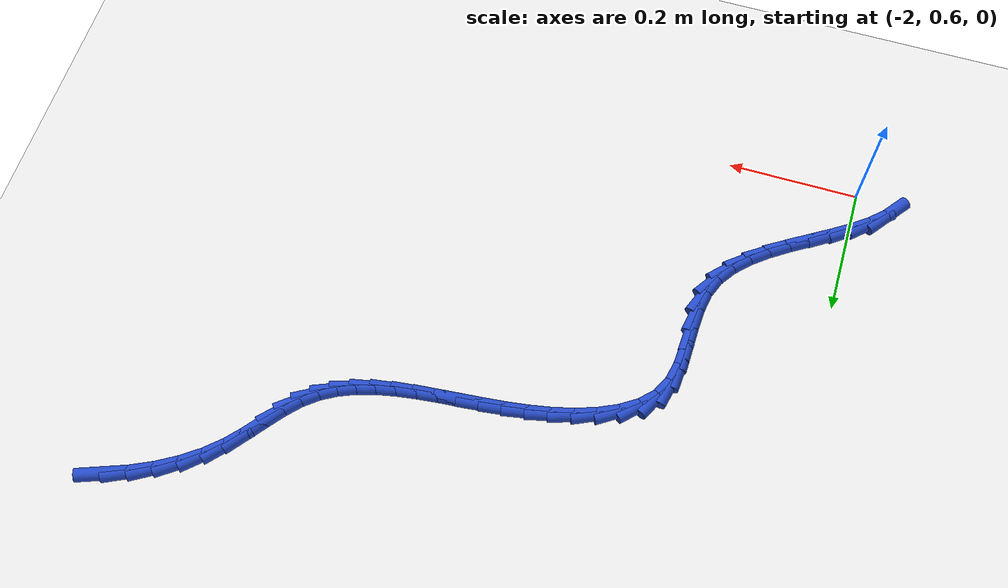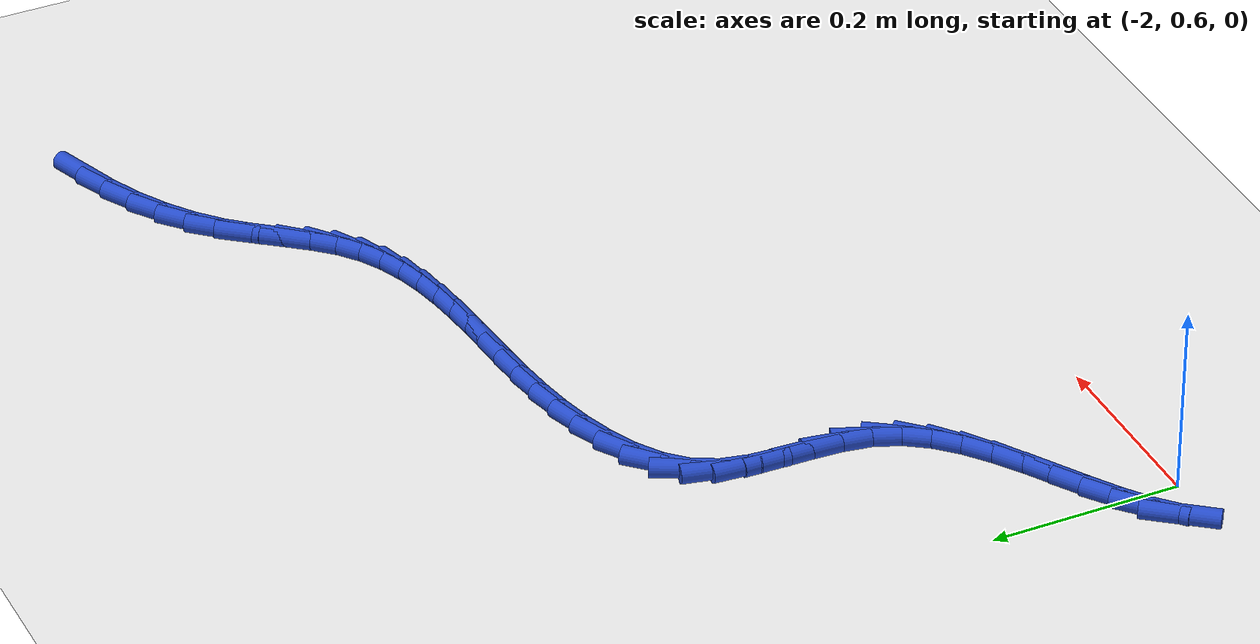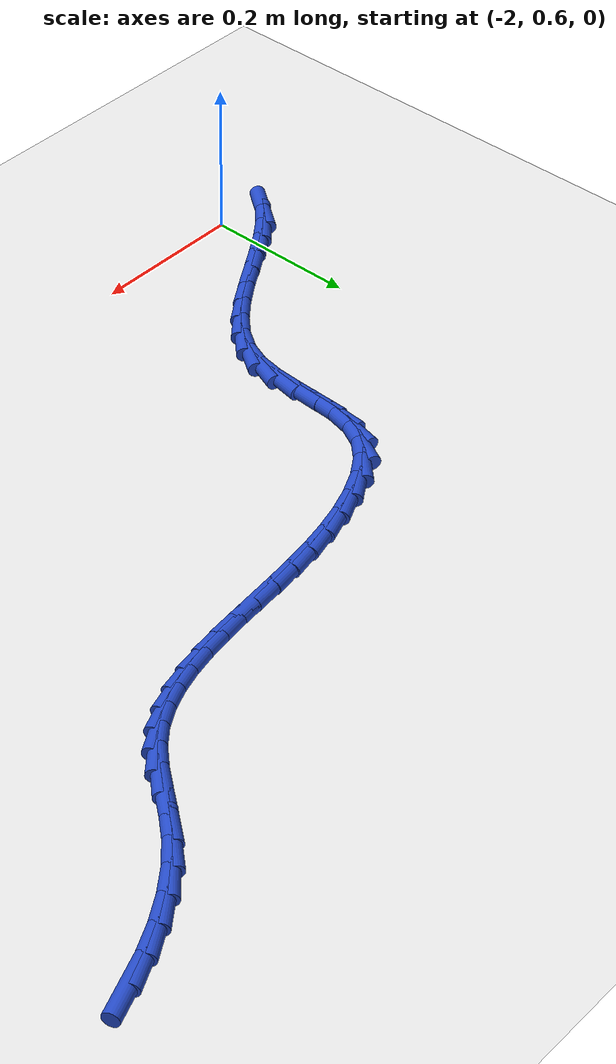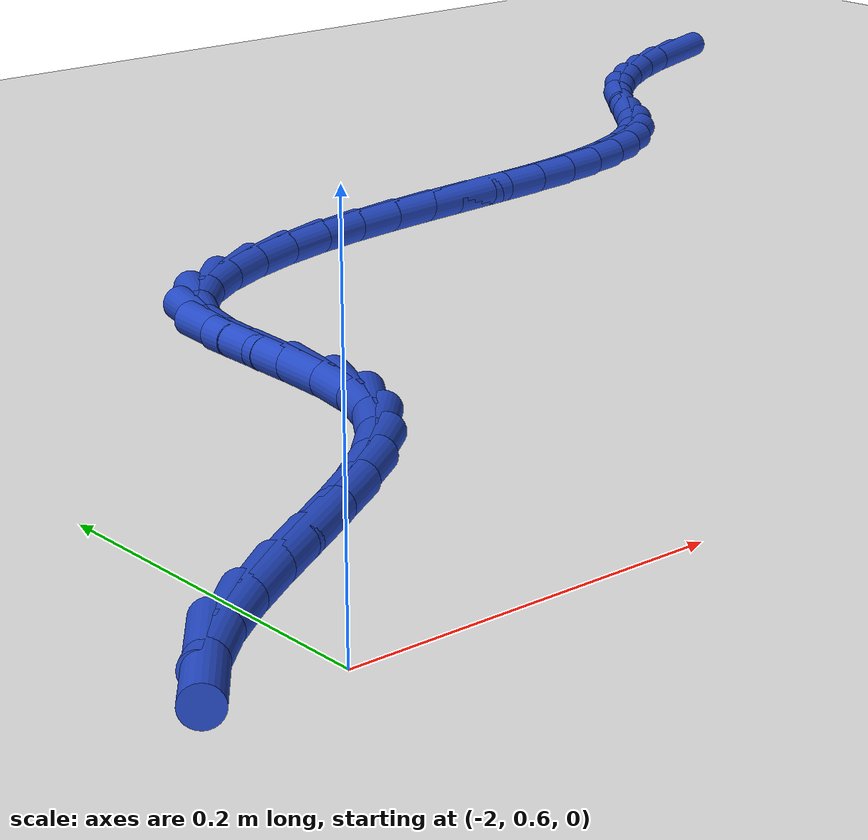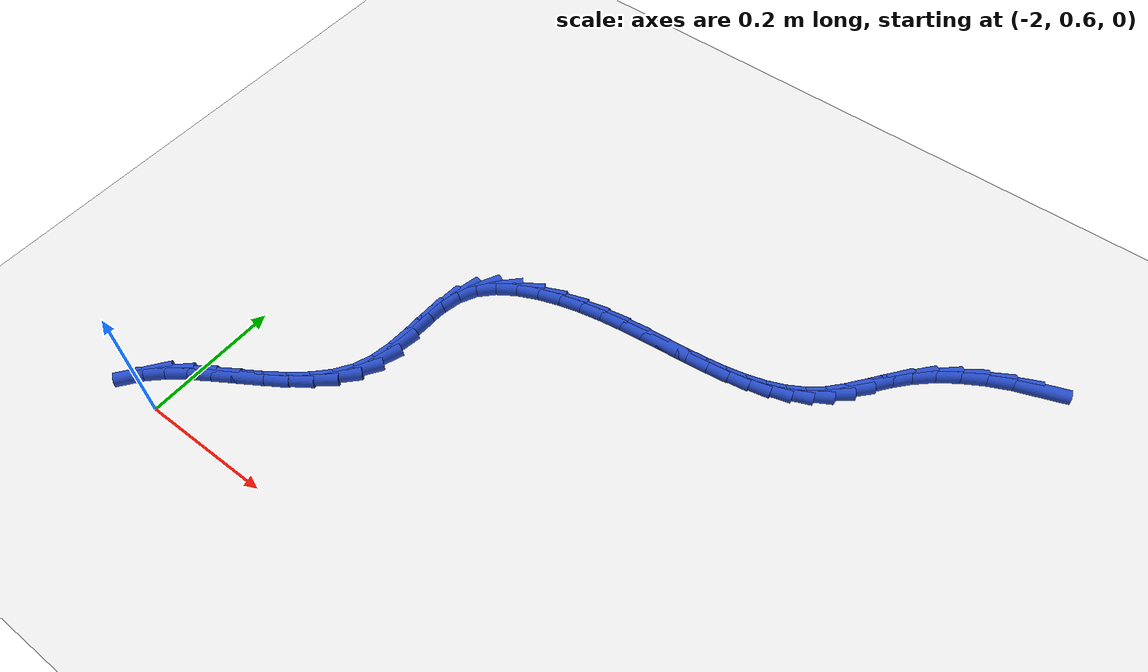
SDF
<sdf version="1.6">
 <world name="default">
  <model name="ground_plane">
   <static>1</static>
   <link name="link">
    <collision name="collision">
     <geometry><plane><normal>0 0 1</normal><size>100 100</size></plane></geometry>
     <surface><friction><ode><mu>100</mu><mu2>50</mu2></ode></friction></surface>
    </collision>
    <visual name="visual">
     <cast_shadows>0</cast_shadows>
     <geometry><plane><normal>0 0 1</normal><size>100 100</size></plane></geometry>
     <material>
      <script><uri>file://media/materials/scripts/gazebo.material</uri><name>Gazebo/WhiteGlow</name></script>
     </material>
    </visual>
   </link>
  </model>
  <model name="line">
   <link name="link_62">
    <pose>-1.0637617504362515 1.3533383351506028 0.01 0 1.57 0.3566321725270101</pose>
    <collision name="collision">
     <geometry><cylinder><radius>0.01</radius><length>0.08</length></cylinder></geometry>
    </collision>
    <visual name="visual">
     <material>
      <script><name>Gazebo/Blue</name><uri>file://media/materials/scripts/gazebo.material</uri></script>
     </material>
     <geometry><cylinder><radius>0.01</radius><length>0.08</length></cylinder></geometry>
    </visual>
   </link>
   <link name="link_63">
    <pose>-1.098061494481492 1.34055952897938 0.01 0 1.57 0.44337216714333494</pose>
    <collision name="collision">
     <geometry><cylinder><radius>0.01</radius><length>0.08</length></cylinder></geometry>
    </collision>
    <visual name="visual">
     <material>
      <script><name>Gazebo/Blue</name><uri>file://media/materials/scripts/gazebo.material</uri></script>
     </material>
     <geometry><cylinder><radius>0.01</radius><length>0.08</length></cylinder></geometry>
    </visual>
   </link>
   <link name="link_64">
    <pose>-1.130945717458065 1.3249425928600767 0.01 0 1.57 0.5342232366662157</pose>
    <collision name="collision">
     <geometry><cylinder><radius>0.01</radius><length>0.08</length></cylinder></geometry>
    </collision>
    <visual name="visual">
     <material>
      <script><name>Gazebo/Blue</name><uri>file://media/materials/scripts/gazebo.material</uri></script>
     </material>
     <geometry><cylinder><radius>0.01</radius><length>0.08</length></cylinder></geometry>
    </visual>
   </link>
   <link name="link_65">
    <pose>-1.1617649572261366 1.306709801553128 0.01 0 1.57 0.6331233170564774</pose>
    <collision name="collision">
     <geometry><cylinder><radius>0.01</radius><length>0.08</length></cylinder></geometry>
    </collision>
    <visual name="visual">
     <material>
      <script><name>Gazebo/Blue</name><uri>file://media/materials/scripts/gazebo.material</uri></script>
     </material>
     <geometry><cylinder><radius>0.01</radius><length>0.08</length></cylinder></geometry>
    </visual>
   </link>
   <link name="link_66">
    <pose>-1.1898697516458727 1.2860834298189712 0.01 0 1.57 0.7445180227827529</pose>
    <collision name="collision">
     <geometry><cylinder><radius>0.01</radius><length>0.08</length></cylinder></geometry>
    </collision>
    <visual name="visual">
     <material>
      <script><name>Gazebo/Blue</name><uri>file://media/materials/scripts/gazebo.material</uri></script>
     </material>
     <geometry><cylinder><radius>0.01</radius><length>0.08</length></cylinder></geometry>
    </visual>
   </link>
   <link name="link_67">
    <pose>-1.2146114518813442 1.263286210612098 0.01 0 1.57 0.8551568165661251</pose>
    <collision name="collision">
     <geometry><cylinder><radius>0.01</radius><length>0.08</length></cylinder></geometry>
    </collision>
    <visual name="visual">
     <material>
      <script><name>Gazebo/Blue</name><uri>file://media/materials/scripts/gazebo.material</uri></script>
     </material>
     <geometry><cylinder><radius>0.01</radius><length>0.08</length></cylinder></geometry>
    </visual>
   </link>
   <link name="link_68">
    <pose>-1.235867122943851 1.2388370502586945 0.01 0 1.57 0.9146644474738805</pose>
    <collision name="collision">
     <geometry><cylinder><radius>0.01</radius><length>0.08</length></cylinder></geometry>
    </collision>
    <visual name="visual">
     <material>
      <script><name>Gazebo/Blue</name><uri>file://media/materials/scripts/gazebo.material</uri></script>
     </material>
     <geometry><cylinder><radius>0.01</radius><length>0.08</length></cylinder></geometry>
    </visual>
   </link>
   <link name="link_69">
    <pose>-1.2549434142028086 1.214060245358944 0.01 0 1.57 0.9083300814473821</pose>
    <collision name="collision">
     <geometry><cylinder><radius>0.01</radius><length>0.08</length></cylinder></geometry>
    </collision>
    <visual name="visual">
     <material>
      <script><name>Gazebo/Blue</name><uri>file://media/materials/scripts/gazebo.material</uri></script>
     </material>
     <geometry><cylinder><radius>0.01</radius><length>0.08</length></cylinder></geometry>
    </visual>
   </link>
   <link name="link_70">
    <pose>-1.2733876796332058 1.1904156991648056 0.01 0 1.57 0.8272620294305417</pose>
    <collision name="collision">
     <geometry><cylinder><radius>0.01</radius><length>0.08</length></cylinder></geometry>
    </collision>
    <visual name="visual">
     <material>
      <script><name>Gazebo/Blue</name><uri>file://media/materials/scripts/gazebo.material</uri></script>
     </material>
     <geometry><cylinder><radius>0.01</radius><length>0.08</length></cylinder></geometry>
    </visual>
   </link>
   <link name="link_71">
    <pose>-1.2927472732100296 1.1693633149282376 0.01 0 1.57 0.6763125241229873</pose>
    <collision name="collision">
     <geometry><cylinder><radius>0.01</radius><length>0.08</length></cylinder></geometry>
    </collision>
    <visual name="visual">
     <material>
      <script><name>Gazebo/Blue</name><uri>file://media/materials/scripts/gazebo.material</uri></script>
     </material>
     <geometry><cylinder><radius>0.01</radius><length>0.08</length></cylinder></geometry>
    </visual>
   </link>
   <link name="link_72">
    <pose>-1.3142991769995678 1.1520661741702618 0.01 0 1.57 0.521705374915482</pose>
    <collision name="collision">
     <geometry><cylinder><radius>0.01</radius><length>0.08</length></cylinder></geometry>
    </collision>
    <visual name="visual">
     <material>
      <script><name>Gazebo/Blue</name><uri>file://media/materials/scripts/gazebo.material</uri></script>
     </material>
     <geometry><cylinder><radius>0.01</radius><length>0.08</length></cylinder></geometry>
    </visual>
   </link>
   <link name="link_73">
    <pose>-1.3381222304066607 1.1383720043857015 0.01 0 1.57 0.38952080807354994</pose>
    <collision name="collision">
     <geometry><cylinder><radius>0.01</radius><length>0.08</length></cylinder></geometry>
    </collision>
    <visual name="visual">
     <material>
      <script><name>Gazebo/Blue</name><uri>file://media/materials/scripts/gazebo.material</uri></script>
     </material>
     <geometry><cylinder><radius>0.01</radius><length>0.08</length></cylinder></geometry>
    </visual>
   </link>
   <link name="link_74">
    <pose>-1.3639634948093373 1.127764298010054 0.01 0 1.57 0.2833220206624581</pose>
    <collision name="collision">
     <geometry><cylinder><radius>0.01</radius><length>0.08</length></cylinder></geometry>
    </collision>
    <visual name="visual">
     <material>
      <script><name>Gazebo/Blue</name><uri>file://media/materials/scripts/gazebo.material</uri></script>
     </material>
     <geometry><cylinder><radius>0.01</radius><length>0.08</length></cylinder></geometry>
    </visual>
   </link>
   <link name="link_75">
    <pose>-1.3915700196650418 1.1197265343920733 0.01 0 1.57 0.20269225563554946</pose>
    <collision name="collision">
     <geometry><cylinder><radius>0.01</radius><length>0.08</length></cylinder></geometry>
    </collision>
    <visual name="visual">
     <material>
      <script><name>Gazebo/Blue</name><uri>file://media/materials/scripts/gazebo.material</uri></script>
     </material>
     <geometry><cylinder><radius>0.01</radius><length>0.08</length></cylinder></geometry>
    </visual>
   </link>
   <link name="link_76">
    <pose>-1.420688854431221 1.1137421928805131 0.01 0 1.57 0.14536965382685466</pose>
    <collision name="collision">
     <geometry><cylinder><radius>0.01</radius><length>0.08</length></cylinder></geometry>
    </collision>
    <visual name="visual">
     <material>
      <script><name>Gazebo/Blue</name><uri>file://media/materials/scripts/gazebo.material</uri></script>
     </material>
     <geometry><cylinder><radius>0.01</radius><length>0.08</length></cylinder></geometry>
    </visual>
   </link>
   <link name="link_77">
    <pose>-1.4510670485653199 1.1092947528241275 0.01 0 1.57 0.10876463344113767</pose>
    <collision name="collision">
     <geometry><cylinder><radius>0.01</radius><length>0.08</length></cylinder></geometry>
    </collision>
    <visual name="visual">
     <material>
      <script><name>Gazebo/Blue</name><uri>file://media/materials/scripts/gazebo.material</uri></script>
     </material>
     <geometry><cylinder><radius>0.01</radius><length>0.08</length></cylinder></geometry>
    </visual>
   </link>
   <link name="link_78">
    <pose>-1.4824516515247839 1.1058676935716698 0.01 0 1.57 0.0907079423159191</pose>
    <collision name="collision">
     <geometry><cylinder><radius>0.01</radius><length>0.08</length></cylinder></geometry>
    </collision>
    <visual name="visual">
     <material>
      <script><name>Gazebo/Blue</name><uri>file://media/materials/scripts/gazebo.material</uri></script>
     </material>
     <geometry><cylinder><radius>0.01</radius><length>0.08</length></cylinder></geometry>
    </visual>
   </link>
   <link name="link_79">
    <pose>-1.5145897127670582 1.1029444944718938 0.01 0 1.57 0.0897091932440971</pose>
    <collision name="collision">
     <geometry><cylinder><radius>0.01</radius><length>0.08</length></cylinder></geometry>
    </collision>
    <visual name="visual">
     <material>
      <script><name>Gazebo/Blue</name><uri>file://media/materials/scripts/gazebo.material</uri></script>
     </material>
     <geometry><cylinder><radius>0.01</radius><length>0.08</length></cylinder></geometry>
    </visual>
   </link>
   <link name="link_80">
    <pose>-1.5472282817495888 1.1000086348735536 0.01 0 1.57 0.1049774851446261</pose>
    <collision name="collision">
     <geometry><cylinder><radius>0.01</radius><length>0.08</length></cylinder></geometry>
    </collision>
    <visual name="visual">
     <material>
      <script><name>Gazebo/Blue</name><uri>file://media/materials/scripts/gazebo.material</uri></script>
     </material>
     <geometry><cylinder><radius>0.01</radius><length>0.08</length></cylinder></geometry>
    </visual>
   </link>
   <link name="link_81">
    <pose>-1.580114407929821 1.0965435941254027 0.01 0 1.57 0.13633397089339824</pose>
    <collision name="collision">
     <geometry><cylinder><radius>0.01</radius><length>0.08</length></cylinder></geometry>
    </collision>
    <visual name="visual">
     <material>
      <script><name>Gazebo/Blue</name><uri>file://media/materials/scripts/gazebo.material</uri></script>
     </material>
     <geometry><cylinder><radius>0.01</radius><length>0.08</length></cylinder></geometry>
    </visual>
   </link>
   <link name="link_82">
    <pose>-1.6129951407652006 1.0920328515761948 0.01 0 1.57 0.18405258518880663</pose>
    <collision name="collision">
     <geometry><cylinder><radius>0.01</radius><length>0.08</length></cylinder></geometry>
    </collision>
    <visual name="visual">
     <material>
      <script><name>Gazebo/Blue</name><uri>file://media/materials/scripts/gazebo.material</uri></script>
     </material>
     <geometry><cylinder><radius>0.01</radius><length>0.08</length></cylinder></geometry>
    </visual>
   </link>
   <link name="link_83">
    <pose>-1.6456175297131725 1.0859598865746838 0.01 0 1.57 0.24860787198362144</pose>
    <collision name="collision">
     <geometry><cylinder><radius>0.01</radius><length>0.08</length></cylinder></geometry>
    </collision>
    <visual name="visual">
     <material>
      <script><name>Gazebo/Blue</name><uri>file://media/materials/scripts/gazebo.material</uri></script>
     </material>
     <geometry><cylinder><radius>0.01</radius><length>0.08</length></cylinder></geometry>
    </visual>
   </link>
   <link name="link_84">
    <pose>-1.677728624231182 1.0778081784696227 0.01 0 1.57 0.33031688483975297</pose>
    <collision name="collision">
     <geometry><cylinder><radius>0.01</radius><length>0.08</length></cylinder></geometry>
    </collision>
    <visual name="visual">
     <material>
      <script><name>Gazebo/Blue</name><uri>file://media/materials/scripts/gazebo.material</uri></script>
     </material>
     <geometry><cylinder><radius>0.01</radius><length>0.08</length></cylinder></geometry>
    </visual>
   </link>
   <link name="link_85">
    <pose>-1.709071211745086 1.0670614643837562 0.01 0 1.57 0.4350412598550102</pose>
    <collision name="collision">
     <geometry><cylinder><radius>0.01</radius><length>0.08</length></cylinder></geometry>
    </collision>
    <visual name="visual">
     <material>
      <script><name>Gazebo/Blue</name><uri>file://media/materials/scripts/gazebo.material</uri></script>
     </material>
     <geometry><cylinder><radius>0.01</radius><length>0.08</length></cylinder></geometry>
    </visual>
   </link>
   <link name="link_86">
    <pose>-1.7388157141018303 1.0532380989586254 0.01 0 1.57 0.5843858915392682</pose>
    <collision name="collision">
     <geometry><cylinder><radius>0.01</radius><length>0.08</length></cylinder></geometry>
    </collision>
    <visual name="visual">
     <material>
      <script><name>Gazebo/Blue</name><uri>file://media/materials/scripts/gazebo.material</uri></script>
     </material>
     <geometry><cylinder><radius>0.01</radius><length>0.08</length></cylinder></geometry>
    </visual>
   </link>
   <link name="link_87">
    <pose>-1.7649890759933797 1.0359255960294222 0.01 0 1.57 0.8024873877388623</pose>
    <collision name="collision">
     <geometry><cylinder><radius>0.01</radius><length>0.08</length></cylinder></geometry>
    </collision>
    <visual name="visual">
     <material>
      <script><name>Gazebo/Blue</name><uri>file://media/materials/scripts/gazebo.material</uri></script>
     </material>
     <geometry><cylinder><radius>0.01</radius><length>0.08</length></cylinder></geometry>
    </visual>
   </link>
   <link name="link_88">
    <pose>-1.7854823057107103 1.0147196910664087 0.01 0 1.57 1.0989279985270046</pose>
    <collision name="collision">
     <geometry><cylinder><radius>0.01</radius><length>0.08</length></cylinder></geometry>
    </collision>
    <visual name="visual">
     <material>
      <script><name>Gazebo/Blue</name><uri>file://media/materials/scripts/gazebo.material</uri></script>
     </material>
     <geometry><cylinder><radius>0.01</radius><length>0.08</length></cylinder></geometry>
    </visual>
   </link>
   <link name="link_89">
    <pose>-1.7984491031771752 0.9893104685184222 0.01 0 1.57 1.3555887614144349</pose>
    <collision name="collision">
     <geometry><cylinder><radius>0.01</radius><length>0.08</length></cylinder></geometry>
    </collision>
    <visual name="visual">
     <material>
      <script><name>Gazebo/Blue</name><uri>file://media/materials/scripts/gazebo.material</uri></script>
     </material>
     <geometry><cylinder><radius>0.01</radius><length>0.08</length></cylinder></geometry>
    </visual>
   </link>
   <link name="link_90">
    <pose>-1.8047754230416284 0.960369336221847 0.01 0 1.57 1.5006673636459393</pose>
    <collision name="collision">
     <geometry><cylinder><radius>0.01</radius><length>0.08</length></cylinder></geometry>
    </collision>
    <visual name="visual">
     <material>
      <script><name>Gazebo/Blue</name><uri>file://media/materials/scripts/gazebo.material</uri></script>
     </material>
     <geometry><cylinder><radius>0.01</radius><length>0.08</length></cylinder></geometry>
    </visual>
   </link>
   <link name="link_91">
    <pose>-1.8069684011161866 0.929149969462771 0.01 0 1.57 1.5525552716506121</pose>
    <collision name="collision">
     <geometry><cylinder><radius>0.01</radius><length>0.08</length></cylinder></geometry>
    </collision>
    <visual name="visual">
     <material>
      <script><name>Gazebo/Blue</name><uri>file://media/materials/scripts/gazebo.material</uri></script>
     </material>
     <geometry><cylinder><radius>0.01</radius><length>0.08</length></cylinder></geometry>
    </visual>
   </link>
   <link name="link_92">
    <pose>-1.807556489918363 0.8969136996880903 0.01 0 1.57 1.5235802716976048</pose>
    <collision name="collision">
     <geometry><cylinder><radius>0.01</radius><length>0.08</length></cylinder></geometry>
    </collision>
    <visual name="visual">
     <material>
      <script><name>Gazebo/Blue</name><uri>file://media/materials/scripts/gazebo.material</uri></script>
     </material>
     <geometry><cylinder><radius>0.01</radius><length>0.08</length></cylinder></geometry>
    </visual>
   </link>
   <link name="link_93">
    <pose>-1.809068141965669 0.8649218583447023 0.01 0 1.57 1.4093950984051509</pose>
    <collision name="collision">
     <geometry><cylinder><radius>0.01</radius><length>0.08</length></cylinder></geometry>
    </collision>
    <visual name="visual">
     <material>
      <script><name>Gazebo/Blue</name><uri>file://media/materials/scripts/gazebo.material</uri></script>
     </material>
     <geometry><cylinder><radius>0.01</radius><length>0.08</length></cylinder></geometry>
    </visual>
   </link>
   <link name="link_94">
    <pose>-1.8140318097756165 0.834435776879503 0.01 0 1.57 1.200398189832131</pose>
    <collision name="collision">
     <geometry><cylinder><radius>0.01</radius><length>0.08</length></cylinder></geometry>
    </collision>
    <visual name="visual">
     <material>
      <script><name>Gazebo/Blue</name><uri>file://media/materials/scripts/gazebo.material</uri></script>
     </material>
     <geometry><cylinder><radius>0.01</radius><length>0.08</length></cylinder></geometry>
    </visual>
   </link>
   <link name="link_95">
    <pose>-1.8248235845018466 0.8066449353267253 0.01 0 1.57 0.9737559742219176</pose>
    <collision name="collision">
     <geometry><cylinder><radius>0.01</radius><length>0.08</length></cylinder></geometry>
    </collision>
    <visual name="visual">
     <material>
      <script><name>Gazebo/Blue</name><uri>file://media/materials/scripts/gazebo.material</uri></script>
     </material>
     <geometry><cylinder><radius>0.01</radius><length>0.08</length></cylinder></geometry>
    </visual>
   </link>
   <link name="link_96">
    <pose>-1.8417412535950348 0.781758715792833 0.01 0 1.57 0.7998884080308292</pose>
    <collision name="collision">
     <geometry><cylinder><radius>0.01</radius><length>0.08</length></cylinder></geometry>
    </collision>
    <visual name="visual">
     <material>
      <script><name>Gazebo/Blue</name><uri>file://media/materials/scripts/gazebo.material</uri></script>
     </material>
     <geometry><cylinder><radius>0.01</radius><length>0.08</length></cylinder></geometry>
    </visual>
   </link>
   <link name="link_97">
    <pose>-1.8635798845283078 0.7592778394056691 0.01 0 1.57 0.6788749047846221</pose>
    <collision name="collision">
     <geometry><cylinder><radius>0.01</radius><length>0.08</length></cylinder></geometry>
    </collision>
    <visual name="visual">
     <material>
      <script><name>Gazebo/Blue</name><uri>file://media/materials/scripts/gazebo.material</uri></script>
     </material>
     <geometry><cylinder><radius>0.01</radius><length>0.08</length></cylinder></geometry>
    </visual>
   </link>
   <link name="link_98">
    <pose>-1.8891011082447817 0.7386872591097606 0.01 0 1.57 0.6020222922248939</pose>
    <collision name="collision">
     <geometry><cylinder><radius>0.01</radius><length>0.08</length></cylinder></geometry>
    </collision>
    <visual name="visual">
     <material>
      <script><name>Gazebo/Blue</name><uri>file://media/materials/scripts/gazebo.material</uri></script>
     </material>
     <geometry><cylinder><radius>0.01</radius><length>0.08</length></cylinder></geometry>
    </visual>
   </link>
   <link name="link_99">
    <pose>-1.917066555687572 0.7194719278496347 0.01 0 1.57 0.5616272488778117</pose>
    <collision name="collision">
     <geometry><cylinder><radius>0.01</radius><length>0.08</length></cylinder></geometry>
    </collision>
    <visual name="visual">
     <material>
      <script><name>Gazebo/Blue</name><uri>file://media/materials/scripts/gazebo.material</uri></script>
     </material>
     <geometry><cylinder><radius>0.01</radius><length>0.08</length></cylinder></geometry>
    </visual>
   </link>
   <link name="link_100">
    <pose>-1.9462378577997947 0.7011167985698182 0.01 0 1.57 0.5536044846292874</pose>
    <collision name="collision">
     <geometry><cylinder><radius>0.01</radius><length>0.08</length></cylinder></geometry>
    </collision>
    <visual name="visual">
     <material>
      <script><name>Gazebo/Blue</name><uri>file://media/materials/scripts/gazebo.material</uri></script>
     </material>
     <geometry><cylinder><radius>0.01</radius><length>0.08</length></cylinder></geometry>
    </visual>
   </link>
   <link name="link_101">
    <pose>-1.975376645524566 0.683106824214838 0.01 0 1.57 0.5780314873293917</pose>
    <collision name="collision">
     <geometry><cylinder><radius>0.01</radius><length>0.08</length></cylinder></geometry>
    </collision>
    <visual name="visual">
     <material>
      <script><name>Gazebo/Blue</name><uri>file://media/materials/scripts/gazebo.material</uri></script>
     </material>
     <geometry><cylinder><radius>0.01</radius><length>0.08</length></cylinder></geometry>
    </visual>
   </link>
   <link name="link_102">
    <pose>-2.003244549805002 0.6649269577292213 0.01 0 1.57 0.6395984743053349</pose>
    <collision name="collision">
     <geometry><cylinder><radius>0.01</radius><length>0.08</length></cylinder></geometry>
    </collision>
    <visual name="visual">
     <material>
      <script><name>Gazebo/Blue</name><uri>file://media/materials/scripts/gazebo.material</uri></script>
     </material>
     <geometry><cylinder><radius>0.01</radius><length>0.08</length></cylinder></geometry>
    </visual>
   </link>
   <link name="link_103">
    <pose>-2.028603201584217 0.6460621520574947 0.01 0 1.57 0.7483136060972118</pose>
    <collision name="collision">
     <geometry><cylinder><radius>0.01</radius><length>0.08</length></cylinder></geometry>
    </collision>
    <visual name="visual">
     <material>
      <script><name>Gazebo/Blue</name><uri>file://media/materials/scripts/gazebo.material</uri></script>
     </material>
     <geometry><cylinder><radius>0.01</radius><length>0.08</length></cylinder></geometry>
    </visual>
   </link>
   <link name="link_104">
    <pose>-2.050214231805329 0.6259973601441856 0.01 0 1.57 0.9188229384367576</pose>
    <collision name="collision">
     <geometry><cylinder><radius>0.01</radius><length>0.08</length></cylinder></geometry>
    </collision>
    <visual name="visual">
     <material>
      <script><name>Gazebo/Blue</name><uri>file://media/materials/scripts/gazebo.material</uri></script>
     </material>
     <geometry><cylinder><radius>0.01</radius><length>0.08</length></cylinder></geometry>
    </visual>
   </link>
  </model>
 </world>
</sdf>
